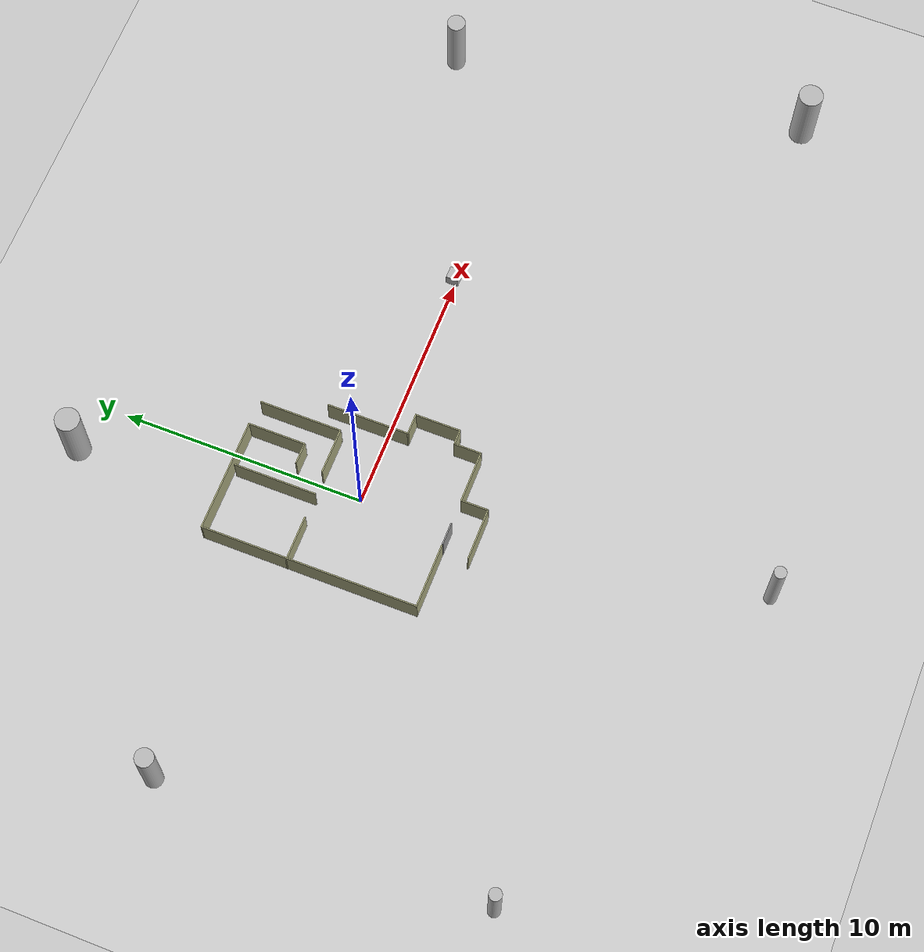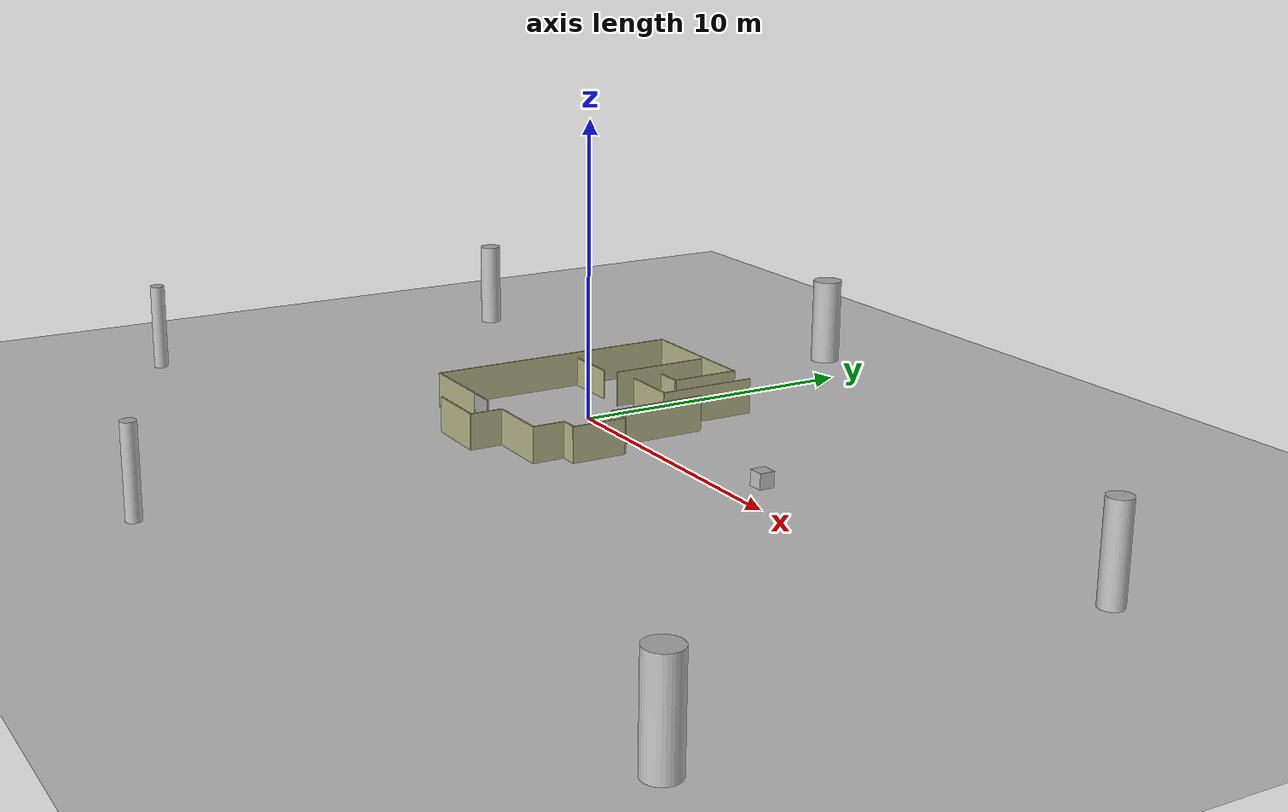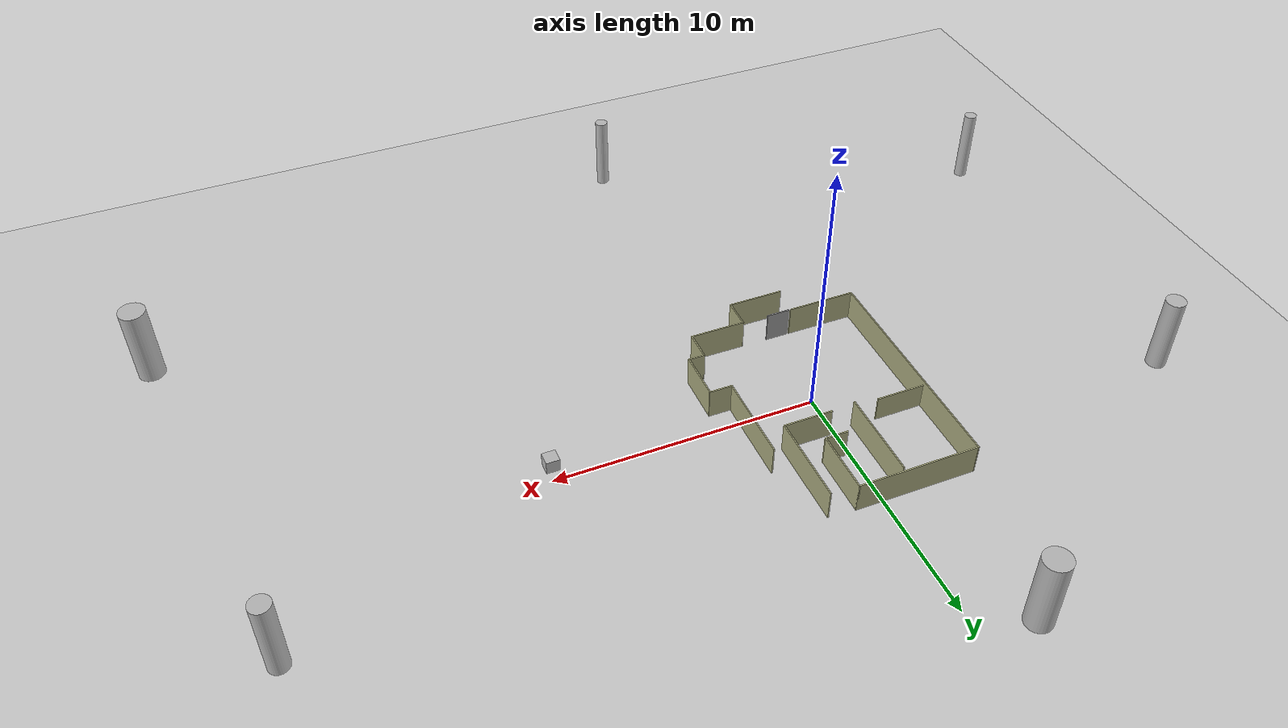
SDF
<?xml version="1.0"?>
<sdf version="1.6">
  <world name="default">

    <!-- GUI -->
    <gui>
      <camera name="gui_camera">
        <pose>-7.6 5.6 5.9 0.0 0.6 -0.85</pose>
      </camera>
    </gui>

    <!-- Only one ROS interface plugin is required per world, as any other plugin can connect a Gazebo
         topic to a ROS topic (or vise versa). -->
    <plugin name="ros_interface_plugin" filename="librotors_gazebo_ros_interface_plugin.so"/>

    <spherical_coordinates>
      <surface_model>EARTH_WGS84</surface_model>
      <latitude_deg>47.3667</latitude_deg>
      <longitude_deg>8.5500</longitude_deg>
      <elevation>500.0</elevation>
      <heading_deg>0</heading_deg>
    </spherical_coordinates>
    <physics type='ode'>
      <ode>
        <solver>
          <type>quick</type>
          <iters>1000</iters>
          <sor>1.3</sor>
        </solver>
        <constraints>
          <cfm>0</cfm>
          <erp>0.2</erp>
          <contact_max_correcting_vel>100</contact_max_correcting_vel>
          <contact_surface_layer>0.001</contact_surface_layer>
        </constraints>
      </ode>
      <max_step_size>0.01</max_step_size>
      <real_time_factor>1</real_time_factor>
      <real_time_update_rate>100</real_time_update_rate>
      <gravity>0 0 -9.81</gravity>
    </physics>

    <!-- Lighting -->
    <include>
      <uri>model://sun</uri>
    </include>

    <!-- Ground -->
    <include>
      <uri>model://ground_plane</uri>
    </include>

    <!-- Walls -->
    <include>
      <uri>model://walls</uri>
    </include>

    <!-- Tag Box -->
    <include>
      <uri>model://tag_box</uri>
      <pose>10.0 0.0 1.0 0.0 0.0 0.0</pose>
      <static>false</static>

    </include>

    <!-- Cylinder -->
    <include>
      <uri>model://cylinder</uri>
      <pose>2.0 -2.5 0.0 0.0 0.0 0.0</pose>
      <static>true</static>
    </include>

    <!-- Depth Camera -->

  </world>
</sdf>

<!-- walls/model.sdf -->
<sdf version='1.6'>
  <model name='walls'>
    <pose frame=''>0.070483 0.106017 0 0 -0 0</pose>
    <link name='Door_4'>
      <collision name='Door_4_Collision'>
        <geometry>
          <box>
            <size>0.906 0.05 1.2</size>
          </box>
        </geometry>
        <pose frame=''>0 0 0.6 0 -0 0</pose>
      </collision>
      <visual name='Door_4_Visual'>
        <pose frame=''>0 0 0.6 0 -0 0</pose>
        <geometry>
          <box>
            <size>0.906 0.05 1.2</size>
          </box>
        </geometry>
        <material>
          <script>
            <uri>file://media/materials/scripts/gazebo.material</uri>
            <name>Gazebo/Grey</name>
          </script>
        </material>
      </visual>
      <pose frame=''>-0.514741 -3.87011 0 0 0 -0.000969</pose>
    </link>
    <link name='Wall_19'>
      <collision name='Wall_19_Collision'>
        <geometry>
          <box>
            <size>1.9 0.05 1</size>
          </box>
        </geometry>
        <pose frame=''>0 0 0.5 0 -0 0</pose>
      </collision>
      <visual name='Wall_19_Visual'>
        <pose frame=''>0 0 0.5 0 -0 0</pose>
        <geometry>
          <box>
            <size>1.9 0.05 1</size>
          </box>
        </geometry>
        <material>
          <script>
            <uri>file://media/materials/scripts/gazebo.material</uri>
            <name>Gazebo/Grey</name>
          </script>
          <ambient>0.666667 0.666667 0.498039 1</ambient>
        </material>
      </visual>
      <pose frame=''>-2.73248 1.48798 0 0 -0 0</pose>
    </link>
    <link name='Wall_21'>
      <collision name='Wall_21_Collision'>
        <geometry>
          <box>
            <size>2.15 0.05 1.2</size>
          </box>
        </geometry>
        <pose frame=''>0 0 0.6 0 -0 0</pose>
      </collision>
      <visual name='Wall_21_Visual'>
        <pose frame=''>0 0 0.6 0 -0 0</pose>
        <geometry>
          <box>
            <size>2.15 0.05 1.2</size>
          </box>
        </geometry>
        <material>
          <script>
            <uri>file://media/materials/scripts/gazebo.material</uri>
            <name>Gazebo/Grey</name>
          </script>
          <ambient>0.666667 0.666667 0.498039 1</ambient>
        </material>
      </visual>
      <pose frame=''>-0.092483 -4.98802 0 0 -0 0</pose>
    </link>
    <link name='Wall_22'>
      <collision name='Wall_22_Collision'>
        <geometry>
          <box>
            <size>1.15 0.05 1.2</size>
          </box>
        </geometry>
        <pose frame=''>0 0 0.6 0 -0 0</pose>
      </collision>
      <visual name='Wall_22_Visual'>
        <pose frame=''>0 0 0.6 0 -0 0</pose>
        <geometry>
          <box>
            <size>1.15 0.05 1.2</size>
          </box>
        </geometry>
        <material>
          <script>
            <uri>file://media/materials/scripts/gazebo.material</uri>
            <name>Gazebo/Grey</name>
          </script>
          <ambient>0.666667 0.666667 0.498039 1</ambient>
        </material>
      </visual>
      <pose frame=''>0.957517 -4.43802 0 0 -0 1.5708</pose>
    </link>
    <link name='Wall_23'>
      <collision name='Wall_23_Collision'>
        <geometry>
          <box>
            <size>2.15 0.05 1.2</size>
          </box>
        </geometry>
        <pose frame=''>0 0 0.6 0 -0 0</pose>
      </collision>
      <visual name='Wall_23_Visual'>
        <pose frame=''>0 0 0.6 0 -0 0</pose>
        <geometry>
          <box>
            <size>2.15 0.05 1.2</size>
          </box>
        </geometry>
        <material>
          <script>
            <uri>file://media/materials/scripts/gazebo.material</uri>
            <name>Gazebo/Grey</name>
          </script>
          <ambient>0.666667 0.666667 0.498039 1</ambient>
        </material>
      </visual>
      <pose frame=''>2.00752 -3.88802 0 0 -0 0</pose>
    </link>
    <link name='Wall_24'>
      <collision name='Wall_24_Collision'>
        <geometry>
          <box>
            <size>1.15 0.05 1.2</size>
          </box>
        </geometry>
        <pose frame=''>0 0 0.6 0 -0 0</pose>
      </collision>
      <visual name='Wall_24_Visual'>
        <pose frame=''>0 0 0.6 0 -0 0</pose>
        <geometry>
          <box>
            <size>1.15 0.05 1.2</size>
          </box>
        </geometry>
        <material>
          <script>
            <uri>file://media/materials/scripts/gazebo.material</uri>
            <name>Gazebo/Grey</name>
          </script>
          <ambient>0.666667 0.666667 0.498039 1</ambient>
        </material>
      </visual>
      <pose frame=''>3.05752 -3.33802 0 0 -0 1.5708</pose>
    </link>
    <link name='Wall_25'>
      <collision name='Wall_25_Collision'>
        <geometry>
          <box>
            <size>0.65 0.05 1.2</size>
          </box>
        </geometry>
        <pose frame=''>0 0 0.6 0 -0 0</pose>
      </collision>
      <visual name='Wall_25_Visual'>
        <pose frame=''>0 0 0.6 0 -0 0</pose>
        <geometry>
          <box>
            <size>0.65 0.05 1.2</size>
          </box>
        </geometry>
        <material>
          <script>
            <uri>file://media/materials/scripts/gazebo.material</uri>
            <name>Gazebo/Grey</name>
          </script>
          <ambient>0.666667 0.666667 0.498039 1</ambient>
        </material>
      </visual>
      <pose frame=''>3.35752 -2.78802 0 0 -0 0</pose>
    </link>
    <link name='Wall_26'>
      <collision name='Wall_26_Collision'>
        <geometry>
          <box>
            <size>1.9 0.05 1.2</size>
          </box>
        </geometry>
        <pose frame=''>0 0 0.6 0 -0 0</pose>
      </collision>
      <visual name='Wall_26_Visual'>
        <pose frame=''>0 0 0.6 0 -0 0</pose>
        <geometry>
          <box>
            <size>1.9 0.05 1.2</size>
          </box>
        </geometry>
        <material>
          <script>
            <uri>file://media/materials/scripts/gazebo.material</uri>
            <name>Gazebo/Grey</name>
          </script>
          <ambient>0.666667 0.666667 0.498039 1</ambient>
        </material>
      </visual>
      <pose frame=''>3.65752 -1.86302 0 0 -0 1.5708</pose>
    </link>
    <link name='Wall_27'>
      <collision name='Wall_27_Collision'>
        <geometry>
          <box>
            <size>0.9 0.05 1.2</size>
          </box>
        </geometry>
        <pose frame=''>0 0 0.6 0 -0 0</pose>
      </collision>
      <visual name='Wall_27_Visual'>
        <pose frame=''>0 0 0.6 0 -0 0</pose>
        <geometry>
          <box>
            <size>0.9 0.05 1.2</size>
          </box>
        </geometry>
        <material>
          <script>
            <uri>file://media/materials/scripts/gazebo.material</uri>
            <name>Gazebo/Grey</name>
          </script>
          <ambient>0.666667 0.666667 0.498039 1</ambient>
        </material>
      </visual>
      <pose frame=''>3.23252 -0.938017 0 0 -0 3.14159</pose>
    </link>
    <link name='Wall_36'>
      <collision name='Wall_36_Collision'>
        <geometry>
          <box>
            <size>1.9 0.05 1.2</size>
          </box>
        </geometry>
        <pose frame=''>0 0 0.6 0 -0 0</pose>
      </collision>
      <visual name='Wall_36_Visual'>
        <pose frame=''>0 0 0.6 0 -0 0</pose>
        <geometry>
          <box>
            <size>1.9 0.05 1.2</size>
          </box>
        </geometry>
        <material>
          <script>
            <uri>file://media/materials/scripts/gazebo.material</uri>
            <name>Gazebo/Grey</name>
          </script>
          <ambient>0.666667 0.666667 0.498039 1</ambient>
        </material>
      </visual>
      <pose frame=''>1.04652 1.55798 0 0 -0 0</pose>
    </link>
    <link name='Wall_48'>
      <collision name='Wall_48_Collision'>
        <geometry>
          <box>
            <size>8.90001 0.05 1.2</size>
          </box>
        </geometry>
        <pose frame=''>0 0 0.6 0 -0 0</pose>
      </collision>
      <visual name='Wall_48_Visual'>
        <pose frame=''>0 0 0.6 0 -0 0</pose>
        <geometry>
          <box>
            <size>8.90001 0.05 1.2</size>
          </box>
        </geometry>
        <material>
          <script>
            <uri>file://media/materials/scripts/gazebo.material</uri>
            <name>Gazebo/Grey</name>
          </script>
          <ambient>0.666667 0.666667 0.498039 1</ambient>
        </material>
      </visual>
      <pose frame=''>-3.65148 0.562983 0 0 -0 1.57215</pose>
    </link>
    <link name='Wall_49'>
      <collision name='Wall_49_Collision'>
        <geometry>
          <box>
            <size>4.65 0.05 1.2</size>
          </box>
        </geometry>
        <pose frame=''>0 0 0.6 0 -0 0</pose>
      </collision>
      <visual name='Wall_49_Visual'>
        <pose frame=''>0 0 0.6 0 -0 0</pose>
        <geometry>
          <box>
            <size>4.65 0.05 1.2</size>
          </box>
        </geometry>
        <material>
          <script>
            <uri>file://media/materials/scripts/gazebo.material</uri>
            <name>Gazebo/Grey</name>
          </script>
          <ambient>0.666667 0.666667 0.498039 1</ambient>
        </material>
      </visual>
      <pose frame=''>-1.35748 4.98798 0 0 -0 0</pose>
    </link>
    <link name='Wall_50'>
      <collision name='Wall_50_Collision'>
        <geometry>
          <box>
            <size>2.4 0.05 1.2</size>
          </box>
        </geometry>
        <pose frame=''>0 0 0.6 0 -0 0</pose>
      </collision>
      <visual name='Wall_50_Visual'>
        <pose frame=''>0 0 0.6 0 -0 0</pose>
        <geometry>
          <box>
            <size>2.4 0.05 1.2</size>
          </box>
        </geometry>
        <material>
          <script>
            <uri>file://media/materials/scripts/gazebo.material</uri>
            <name>Gazebo/Grey</name>
          </script>
          <ambient>0.666667 0.666667 0.498039 1</ambient>
        </material>
      </visual>
      <pose frame=''>0.942517 3.81298 0 0 0 -1.5708</pose>
    </link>
    <link name='Wall_51'>
      <collision name='Wall_51_Collision'>
        <geometry>
          <box>
            <size>0.9 0.05 1.2</size>
          </box>
        </geometry>
        <pose frame=''>0 0 0.6 0 -0 0</pose>
      </collision>
      <visual name='Wall_51_Visual'>
        <pose frame=''>0 0 0.6 0 -0 0</pose>
        <geometry>
          <box>
            <size>0.9 0.05 1.2</size>
          </box>
        </geometry>
        <material>
          <script>
            <uri>file://media/materials/scripts/gazebo.material</uri>
            <name>Gazebo/Grey</name>
          </script>
          <ambient>0.666667 0.666667 0.498039 1</ambient>
        </material>
      </visual>
      <pose frame=''>0.517517 2.63798 0 0 -0 3.14159</pose>
    </link>
    <link name='Wall_53'>
      <collision name='Wall_53_Collision'>
        <geometry>
          <box>
            <size>3.4 0.05 1.2</size>
          </box>
        </geometry>
        <pose frame=''>0 0 0.6 0 -0 0</pose>
      </collision>
      <visual name='Wall_53_Visual'>
        <pose frame=''>0 0 0.6 0 -0 0</pose>
        <geometry>
          <box>
            <size>3.4 0.05 1.2</size>
          </box>
        </geometry>
        <material>
          <script>
            <uri>file://media/materials/scripts/gazebo.material</uri>
            <name>Gazebo/Grey</name>
          </script>
          <ambient>0.666667 0.666667 0.498039 1</ambient>
        </material>
      </visual>
      <pose frame=''>-0.835483 3.14198 0 0 -0 1.5708</pose>
    </link>
    <link name='Wall_58'>
      <collision name='Wall_58_Collision'>
        <geometry>
          <box>
            <size>3.4 0.05 1.2</size>
          </box>
        </geometry>
        <pose frame=''>0 0 0.6 0 -0 0</pose>
      </collision>
      <visual name='Wall_58_Visual'>
        <pose frame=''>0 0 0.6 0 -0 0</pose>
        <geometry>
          <box>
            <size>3.4 0.05 1.2</size>
          </box>
        </geometry>
        <material>
          <script>
            <uri>file://media/materials/scripts/gazebo.material</uri>
            <name>Gazebo/Grey</name>
          </script>
          <ambient>0.666667 0.666667 0.498039 1</ambient>
        </material>
      </visual>
      <pose frame=''>1.97152 3.23298 0 0 -0 1.5708</pose>
    </link>
    <link name='Wall_61'>
      <collision name='Wall_61_Collision'>
        <geometry>
          <box>
            <size>2.65 0.05 1.2</size>
          </box>
        </geometry>
        <pose frame=''>0 0 0.6 0 -0 0</pose>
      </collision>
      <visual name='Wall_61_Visual'>
        <pose frame=''>0 0 0.6 0 -0 0</pose>
        <geometry>
          <box>
            <size>2.65 0.05 1.2</size>
          </box>
        </geometry>
        <material>
          <script>
            <uri>file://media/materials/scripts/gazebo.material</uri>
            <name>Gazebo/Grey</name>
          </script>
          <ambient>0.666667 0.666667 0.498039 1</ambient>
        </material>
      </visual>
      <pose frame=''>-2.34548 -3.86202 0 0 -0 0</pose>
    </link>
    <link name='Wall_63'>
      <collision name='Wall_63_Collision'>
        <geometry>
          <box>
            <size>3.4 0.05 1.2</size>
          </box>
        </geometry>
        <pose frame=''>0 0 0.6 0 -0 0</pose>
      </collision>
      <visual name='Wall_63_Visual'>
        <pose frame=''>0 0 0.6 0 -0 0</pose>
        <geometry>
          <box>
            <size>3.4 0.05 1.2</size>
          </box>
        </geometry>
        <material>
          <script>
            <uri>file://media/materials/scripts/gazebo.material</uri>
            <name>Gazebo/Grey</name>
          </script>
          <ambient>0.666667 0.666667 0.498039 1</ambient>
        </material>
      </visual>
      <pose frame=''>2.80752 0.736983 0 0 -0 1.5708</pose>
    </link>
    <static>1</static>
  </model>
</sdf>

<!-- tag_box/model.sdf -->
<sdf version="1.5">
  <model name="tag_box">
    <include>
      <uri>model://tag</uri>
      <pose>-0.25 0 0 0 0 0</pose>
    </include>
    <link name="box">
      <pose>0 0 0 0 0 0</pose>
      <collision name="collision">
        <geometry>
          <box>
            <size> 0.5 0.5 0.5</size>
          </box>
        </geometry>
      </collision>
      <visual name="visual">
        <cast_shadows>false</cast_shadows>
        <geometry>
          <box>
            <size> 0.5 0.5 0.5</size>
          </box>
        </geometry>
        <material>
          <emissive>1 1 1 0</emissive>
        </material>
      </visual>
    </link>
    <joint name="joint" type="fixed">
      <pose>0 0 0 0 0 0 0</pose>
      <parent>box</parent>
      <child>tag::link</child>
    </joint>
    <plugin name="tag_box_plugin" filename="libtag_box_plugin.so">

    </plugin>
  </model>
</sdf>

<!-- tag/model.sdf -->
<sdf version="1.5">
  <model name="tag">
    <link name="link">
      <pose>0 0 0 0 0 0</pose>
      <collision name="collision">
        <geometry>
          <box>
            <size> 0.001 0.5 0.5</size>
          </box>
        </geometry>
      </collision>
      <visual name="visual">
        <cast_shadows>false</cast_shadows>
        <geometry>
          <box>
            <size> 0.001 0.5 0.5</size>
          </box>
        </geometry>
        <material>
          <emissive>1 1 1 1</emissive>
          <script>
            <uri>model://tag/materials/scripts</uri>
            <uri>model://tag/materials/textures</uri>
            <name>Tag</name>
          </script>
        </material>
      </visual>
    </link>
  </model>
</sdf>

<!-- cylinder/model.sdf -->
<sdf version="1.5">
    <model name="cylinder">
        <static>true</static>
        <link name="link">
            <collision name="collision1">
                <pose>20 -8.4 0 0 0 0</pose>
                <geometry>
                    <mesh>
                        <uri>model://cylinder/meshes/cylinder_1.stl</uri>
                    </mesh>
                </geometry>
            </collision>
            <visual name="visual1">

              <pose>20 -8.4 0 0 0 0</pose>
              <geometry>
              <mesh>
                 <uri>model://cylinder/meshes/cylinder_1.dae</uri>
              </mesh>
              </geometry>

              <material>
                  <script>
                      <uri>model://cylinder/materials/scripts</uri>
                      <uri>model://cylinder/materials/textures</uri>
                      <name>cylinderMat/Diffuse</name>
                  </script>
              </material>
             </visual>

             <collision name="collision2">
                <pose>-4 13.7 0 0 0 0</pose>
                <geometry>
                    <mesh>
                        <uri>model://cylinder/meshes/cylinder_1.stl</uri>
                    </mesh>
                </geometry>
            </collision>
            <visual name="visual2">

              <pose>-4 13.7 0 0 0 0</pose>
              <geometry>
              <mesh>
                 <uri>model://cylinder/meshes/cylinder_1.dae</uri>
              </mesh>
              </geometry>

              <material>
                  <script>
                      <uri>model://cylinder/materials/scripts</uri>
                      <uri>model://cylinder/materials/textures</uri>
                      <name>cylinderMat/Diffuse</name>
                  </script>
              </material>
             </visual>

             <collision name="collision3">
                <pose>-15 -8 0 0 0 0</pose>
                <geometry>
                    <mesh>
                        <uri>model://cylinder/meshes/cylinder_0_5.stl</uri>
                    </mesh>
                </geometry>
            </collision>
            <visual name="visual3">

              <pose>-15 -8 0 0 0 0</pose>
              <geometry>
              <mesh>
                 <uri>model://cylinder/meshes/cylinder_0_5.dae</uri>
              </mesh>
              </geometry>

              <material>
                  <script>
                      <uri>model://cylinder/materials/scripts</uri>
                      <uri>model://cylinder/materials/textures</uri>
                      <name>cylinderMat/Diffuse</name>
                  </script>
              </material>
             </visual>

             <collision name="collision4">
                <pose>0 -13.6 0 0 0 0</pose>
                <geometry>
                    <mesh>
                        <uri>model://cylinder/meshes/cylinder_0_5.stl</uri>
                    </mesh>
                </geometry>
            </collision>
            <visual name="visual4">

              <pose>0 -13.6 0 0 0 0</pose>
              <geometry>
              <mesh>
                 <uri>model://cylinder/meshes/cylinder_0_5.dae</uri>
              </mesh>
              </geometry>

              <material>
                  <script>
                      <uri>model://cylinder/materials/scripts</uri>
                      <uri>model://cylinder/materials/textures</uri>
                      <name>cylinderMat/Diffuse</name>
                  </script>
              </material>
             </visual>

             <collision name="collision5">
                <pose>18 6.3 0 0 0 0</pose>
                <geometry>
                    <mesh>
                        <uri>model://cylinder/meshes/cylinder_0_75.stl</uri>
                    </mesh>
                </geometry>
            </collision>
            <visual name="visual5">

              <pose>18 6.3 0 0 0 0</pose>
              <geometry>
              <mesh>
                 <uri>model://cylinder/meshes/cylinder_0_75.dae</uri>
              </mesh>
              </geometry>

              <material>
                  <script>
                      <uri>model://cylinder/materials/scripts</uri>
                      <uri>model://cylinder/materials/textures</uri>
                      <name>cylinderMat/Diffuse</name>
                  </script>
              </material>
             </visual>

             <collision name="collision6">
                <pose>-15 5.5 0 0 0 0</pose>
                <geometry>
                    <mesh>
                        <uri>model://cylinder/meshes/cylinder_0_75.stl</uri>
                    </mesh>
                </geometry>
            </collision>
            <visual name="visual6">

              <pose>-15 5.5 0 0 0 0</pose>
              <geometry>
              <mesh>
                 <uri>model://cylinder/meshes/cylinder_0_75.dae</uri>
              </mesh>
              </geometry>

              <material>
                  <script>
                      <uri>model://cylinder/materials/scripts</uri>
                      <uri>model://cylinder/materials/textures</uri>
                      <name>cylinderMat/Diffuse</name>
                  </script>
              </material>
             </visual>

        </link>
    </model>
</sdf>
